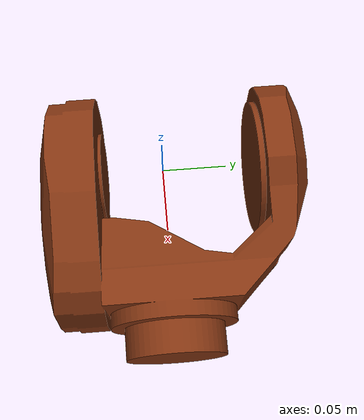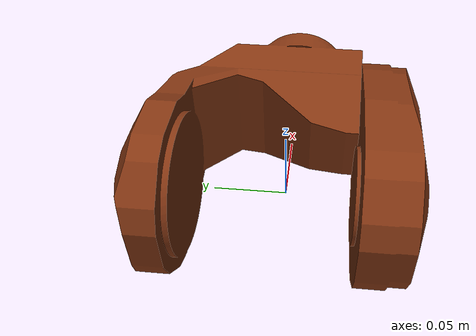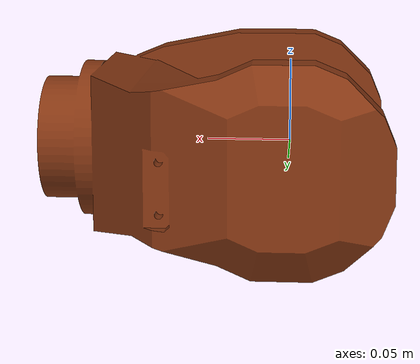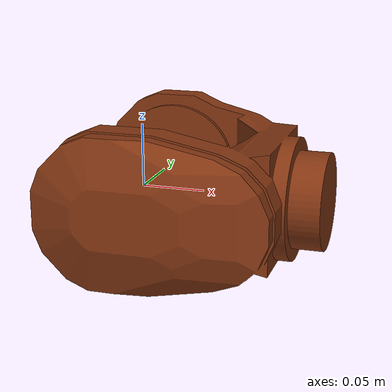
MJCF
<mujoco model="link_5">
  <default>
    <default class="visual">
      <geom group="2" type="mesh" contype="0" conaffinity="0"/>
    </default>
    <default class="collision">
      <geom group="3" type="mesh"/>
    </default>
  </default>
  <asset>
    <material name="RAL2003.003" specular="0.5" shininess="0.25" rgba="0.512000 0.208814 0.070272 1.000000"/>
    <mesh file="link_5.obj"/>
  </asset>
  <worldbody>
    <body name="link_5">
      <geom material="RAL2003.003" mesh="link_5" class="visual"/>
      <geom mesh="link_5" class="collision"/>
    </body>
  </worldbody>
</mujoco>
